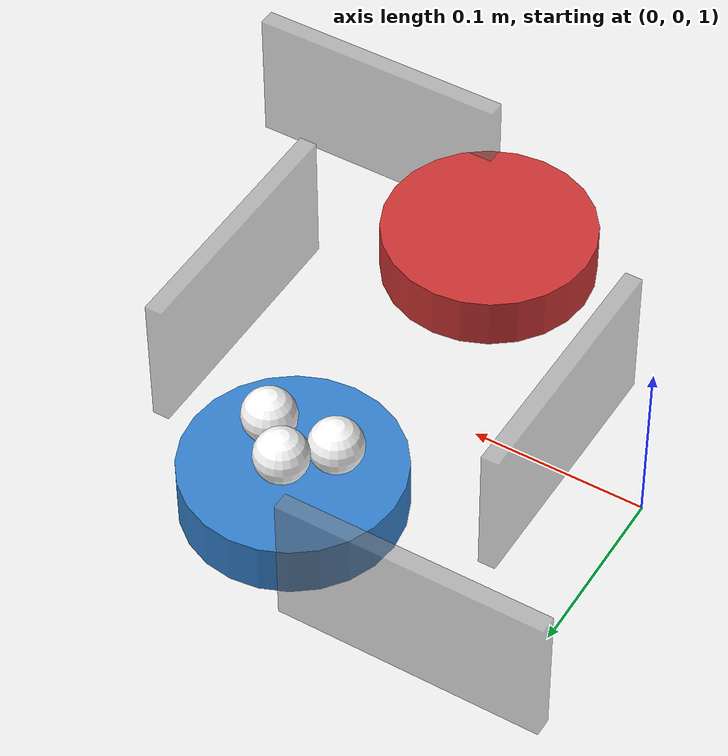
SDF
<sdf version="1.7">
 <world name="pick_and_place_balls">
  <physics name="1ms" type="ignored">
   <max_step_size>0.001</max_step_size>
   <real_time_factor>1.0</real_time_factor>
  </physics>
  <plugin filename="gz-sim-physics-system" name="gz::sim::systems::Physics"/>
  <plugin filename="gz-sim-user-commands-system" name="gz::sim::systems::UserCommands"/>
  <plugin filename="gz-sim-scene-broadcaster-system" name="gz::sim::systems::SceneBroadcaster"/>
  <plugin filename="gz-sim-sensors-system" name="gz::sim::systems::Sensors">
   <render_engine>ogre2</render_engine>
  </plugin>
  <include><uri>https://fuel.gazebosim.org/1.0/OpenRobotics/models/Ground Plane</uri></include>
  <include><uri>https://fuel.gazebosim.org/1.0/OpenRobotics/models/Sun</uri></include>
  <model name="bowl_with_balls">
   <pose>0.15 0.10 1.03 0 0 0</pose>
   <static>true</static>
   <link name="bowl_link">
    <visual name="bowl_visual">
     <geometry><cylinder><radius>0.06</radius><length>0.03</length></cylinder></geometry>
     <material><ambient>0.2 0.5 0.8 1</ambient><diffuse>0.2 0.5 0.8 1</diffuse></material>
    </visual>
    <collision name="bowl_collision">
     <geometry><cylinder><radius>0.06</radius><length>0.03</length></cylinder></geometry>
    </collision>
   </link>
  </model>
  <model name="empty_bowl">
   <pose>0.15 -0.10 1.03 0 0 0</pose>
   <static>true</static>
   <link name="bowl_link">
    <visual name="bowl_visual">
     <geometry><cylinder><radius>0.06</radius><length>0.03</length></cylinder></geometry>
     <material><ambient>0.8 0.2 0.2 1</ambient><diffuse>0.8 0.2 0.2 1</diffuse></material>
    </visual>
    <collision name="bowl_collision">
     <geometry><cylinder><radius>0.06</radius><length>0.03</length></cylinder></geometry>
    </collision>
   </link>
  </model>
  <model name="boundary_front">
   <static>true</static>
   <pose>0.05 0.15 1.04 0 0 0</pose>
   <link name="wall_link">
    <visual name="wall_visual">
     <geometry><box><size>0.15 0.01 0.08</size></box></geometry>
     <material><ambient>0.5 0.5 0.5 0.5</ambient><diffuse>0.5 0.5 0.5 0.5</diffuse></material>
    </visual>
    <collision name="wall_collision"><geometry><box><size>0.15 0.01 0.08</size></box></geometry></collision>
   </link>
  </model>
  <model name="boundary_back">
   <static>true</static>
   <pose>0.25 -0.15 1.04 0 0 0</pose>
   <link name="wall_link">
    <visual name="wall_visual">
     <geometry><box><size>0.15 0.01 0.08</size></box></geometry>
     <material><ambient>0.5 0.5 0.5 0.5</ambient><diffuse>0.5 0.5 0.5 0.5</diffuse></material>
    </visual>
    <collision name="wall_collision"><geometry><box><size>0.15 0.01 0.08</size></box></geometry></collision>
   </link>
  </model>
  <model name="boundary_left">
   <static>true</static>
   <pose>0.05 0.0 1.04 0 0 1.57</pose>
   <link name="wall_link">
    <visual name="wall_visual">
     <geometry><box><size>0.15 0.01 0.08</size></box></geometry>
     <material><ambient>0.5 0.5 0.5 0.5</ambient><diffuse>0.5 0.5 0.5 0.5</diffuse></material>
    </visual>
    <collision name="wall_collision"><geometry><box><size>0.15 0.01 0.08</size></box></geometry></collision>
   </link>
  </model>
  <model name="boundary_right">
   <static>true</static>
   <pose>0.25 0.0 1.04 0 0 1.57</pose>
   <link name="wall_link">
    <visual name="wall_visual">
     <geometry><box><size>0.15 0.01 0.08</size></box></geometry>
     <material><ambient>0.5 0.5 0.5 0.5</ambient><diffuse>0.5 0.5 0.5 0.5</diffuse></material>
    </visual>
    <collision name="wall_collision"><geometry><box><size>0.15 0.01 0.08</size></box></geometry></collision>
   </link>
  </model>
  <model name="ball_1">
   <pose>0.15 0.11 1.06 0 0 0</pose>
   <link name="ball_link">
    <inertial>
     <mass>0.005</mass>
     <inertia><ixx>0.00001</ixx><iyy>0.00001</iyy><izz>0.00001</izz></inertia>
    </inertial>
    <visual name="ball_visual">
     <geometry><sphere><radius>0.015</radius></sphere></geometry>
     <material><ambient>1 1 1 1</ambient><diffuse>1 1 1 1</diffuse><specular>0.5 0.5 0.5 1</specular></material>
    </visual>
    <collision name="ball_collision">
     <geometry><sphere><radius>0.015</radius></sphere></geometry>
     <surface>
      <friction><ode><mu>0.8</mu><mu2>0.8</mu2></ode></friction>
      <bounce><restitution_coefficient>0.3</restitution_coefficient></bounce>
     </surface>
    </collision>
   </link>
  </model>
  <model name="ball_2">
   <pose>0.17 0.09 1.06 0 0 0</pose>
   <link name="ball_link">
    <inertial>
     <mass>0.005</mass>
     <inertia><ixx>0.00001</ixx><iyy>0.00001</iyy><izz>0.00001</izz></inertia>
    </inertial>
    <visual name="ball_visual">
     <geometry><sphere><radius>0.015</radius></sphere></geometry>
     <material><ambient>1 1 1 1</ambient><diffuse>1 1 1 1</diffuse><specular>0.5 0.5 0.5 1</specular></material>
    </visual>
    <collision name="ball_collision">
     <geometry><sphere><radius>0.015</radius></sphere></geometry>
     <surface>
      <friction><ode><mu>0.8</mu><mu2>0.8</mu2></ode></friction>
      <bounce><restitution_coefficient>0.3</restitution_coefficient></bounce>
     </surface>
    </collision>
   </link>
  </model>
  <model name="ball_3">
   <pose>0.13 0.09 1.06 0 0 0</pose>
   <link name="ball_link">
    <inertial>
     <mass>0.005</mass>
     <inertia><ixx>0.00001</ixx><iyy>0.00001</iyy><izz>0.00001</izz></inertia>
    </inertial>
    <visual name="ball_visual">
     <geometry><sphere><radius>0.015</radius></sphere></geometry>
     <material><ambient>1 1 1 1</ambient><diffuse>1 1 1 1</diffuse><specular>0.5 0.5 0.5 1</specular></material>
    </visual>
    <collision name="ball_collision">
     <geometry><sphere><radius>0.015</radius></sphere></geometry>
     <surface>
      <friction><ode><mu>0.8</mu><mu2>0.8</mu2></ode></friction>
      <bounce><restitution_coefficient>0.3</restitution_coefficient></bounce>
     </surface>
    </collision>
   </link>
  </model>
  <gravity>0 0 -9.8</gravity>
  <magnetic_field>6e-06 2.3e-05 -4.2e-05</magnetic_field>
  <atmosphere type="adiabatic"/>
  <scene><ambient>0.6 0.6 0.6 1</ambient><background>0.7 0.7 0.7 1</background><shadows>1</shadows></scene>
 </world>
</sdf>
